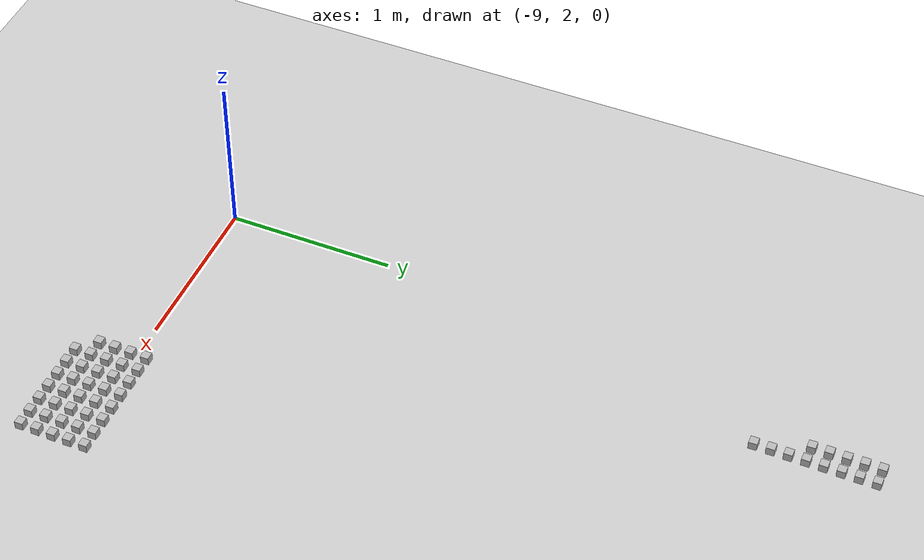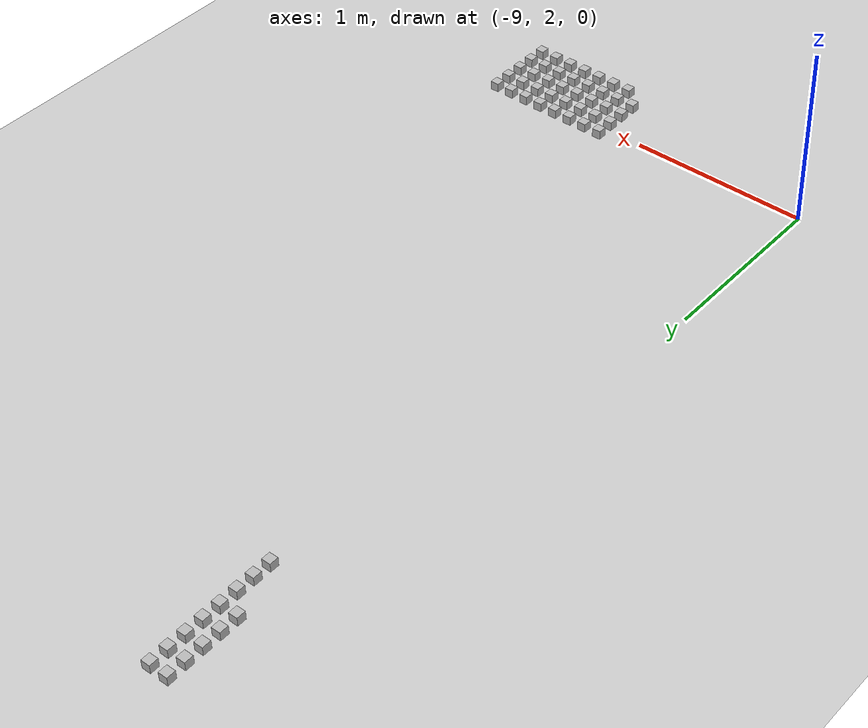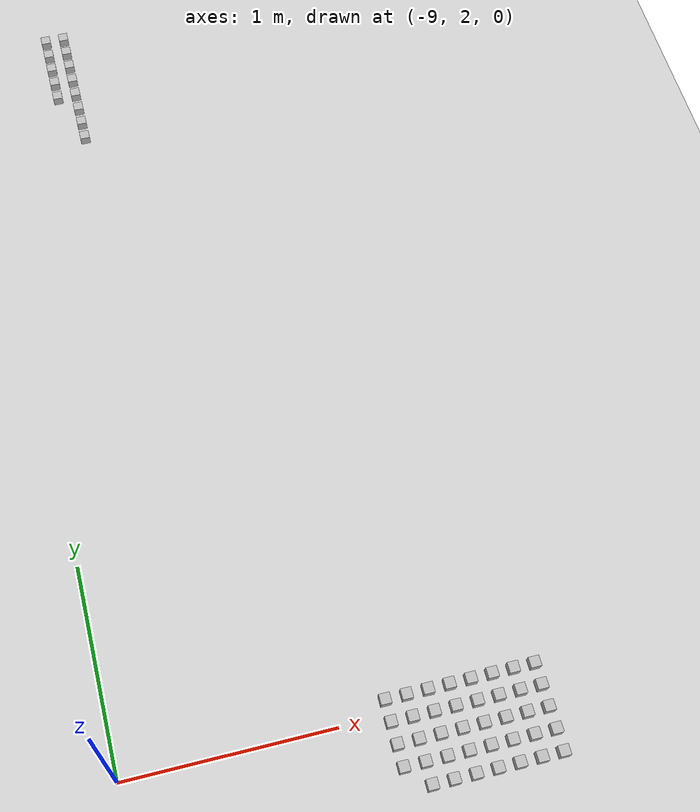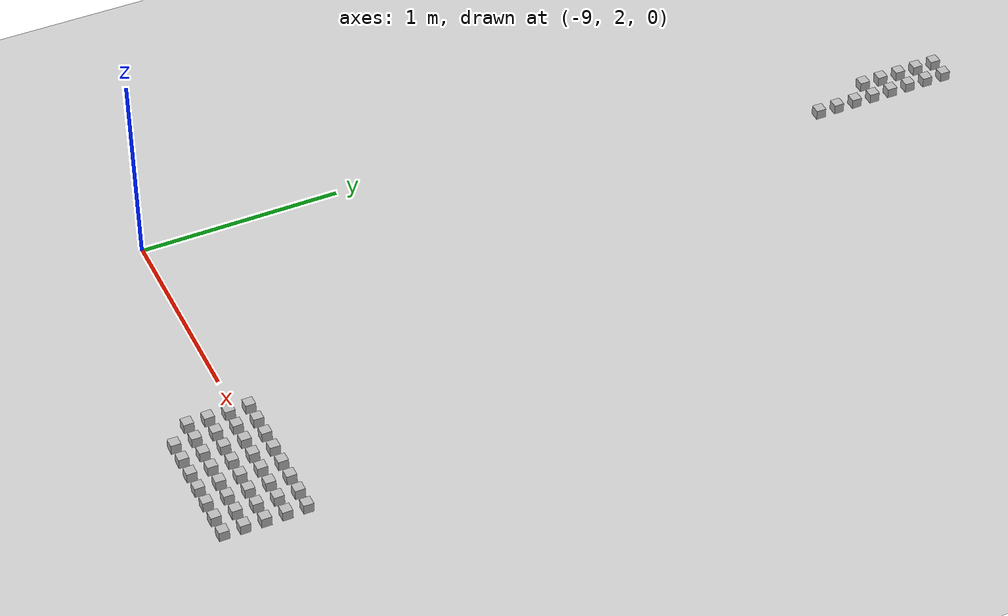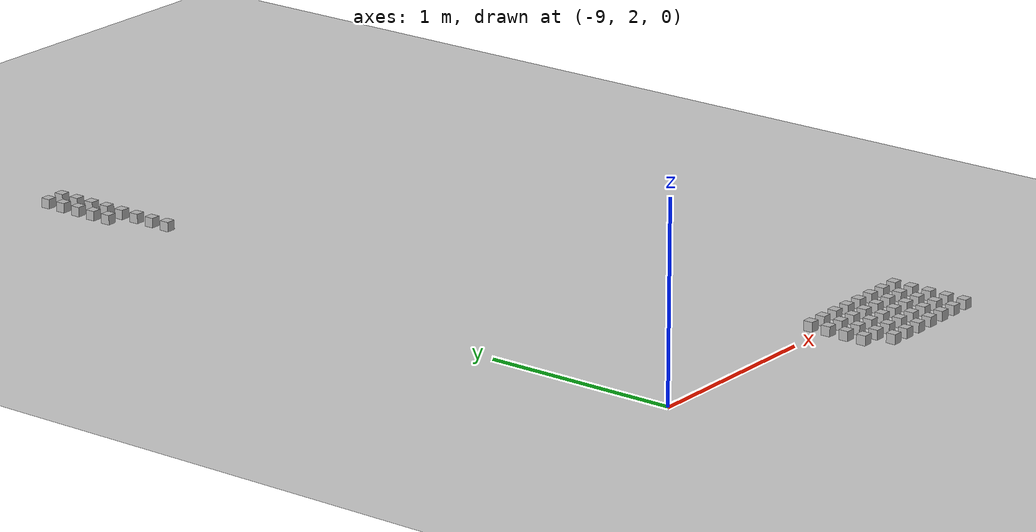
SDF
<sdf version="1.4">
 <world name="default">
  <model name="ground_plane">
   <static>1</static>
   <link name="link">
    <collision name="collision">
     <geometry><plane><normal>0 0 1</normal><size>100 100</size></plane></geometry>
     <surface><friction><ode><mu>100</mu><mu2>50</mu2></ode></friction></surface>
    </collision>
    <visual name="visual">
     <cast_shadows>0</cast_shadows>
     <geometry><plane><normal>0 0 1</normal><size>100 100</size></plane></geometry>
     <material>
      <script><uri>file://media/materials/scripts/gazebo.material</uri><name>Gazebo/Grey</name></script>
     </material>
    </visual>
    <velocity_decay><linear>0</linear><angular>0</angular></velocity_decay>
   </link>
  </model>
  <model name="at25">
   <static>0</static>
   <link name="link">
    <inertial>
     <mass>0.01</mass>
     <inertia><ixx>4e-05</ixx><ixy>0</ixy><ixz>0</ixz><iyy>4e-05</iyy><iyz>0</iyz><izz>4e-05</izz></inertia>
    </inertial>
    <visual name="visual">
     <geometry><box><size>0.05 0.05 0.05</size></box></geometry>
     <material>
      <script>
       <uri>model://at0/materials/scripts</uri>
       <uri>model://at0/materials/textures</uri>
       <name>at0/Diffuse</name>
      </script>
     </material>
    </visual>
    <collision name="collision">
     <geometry><box><size>0.05 0.05 0.05</size></box></geometry>
     <surface><friction><ode><mu>0.8</mu><mu2>0.7</mu2></ode></friction></surface>
    </collision>
    <velocity_decay><linear>0</linear><angular>0</angular></velocity_decay>
   </link>
   <pose>-7.67385 1.66515 0.025 0 -0 0</pose>
  </model>
  <model name="at26">
   <static>0</static>
   <link name="link">
    <inertial>
     <mass>0.01</mass>
     <inertia><ixx>4e-05</ixx><ixy>0</ixy><ixz>0</ixz><iyy>4e-05</iyy><iyz>0</iyz><izz>4e-05</izz></inertia>
    </inertial>
    <visual name="visual">
     <geometry><box><size>0.05 0.05 0.05</size></box></geometry>
     <material>
      <script>
       <uri>model://at0/materials/scripts</uri>
       <uri>model://at0/materials/textures</uri>
       <name>at0/Diffuse</name>
      </script>
     </material>
    </visual>
    <collision name="collision">
     <geometry><box><size>0.05 0.05 0.05</size></box></geometry>
     <surface><friction><ode><mu>0.8</mu><mu2>0.7</mu2></ode></friction></surface>
    </collision>
    <velocity_decay><linear>0</linear><angular>0</angular></velocity_decay>
   </link>
   <pose>-7.57385 1.66515 0.025 0 -0 0</pose>
  </model>
  <model name="at27">
   <static>0</static>
   <link name="link">
    <inertial>
     <mass>0.01</mass>
     <inertia><ixx>4e-05</ixx><ixy>0</ixy><ixz>0</ixz><iyy>4e-05</iyy><iyz>0</iyz><izz>4e-05</izz></inertia>
    </inertial>
    <visual name="visual">
     <geometry><box><size>0.05 0.05 0.05</size></box></geometry>
     <material>
      <script>
       <uri>model://at0/materials/scripts</uri>
       <uri>model://at0/materials/textures</uri>
       <name>at0/Diffuse</name>
      </script>
     </material>
    </visual>
    <collision name="collision">
     <geometry><box><size>0.05 0.05 0.05</size></box></geometry>
     <surface><friction><ode><mu>0.8</mu><mu2>0.7</mu2></ode></friction></surface>
    </collision>
    <velocity_decay><linear>0</linear><angular>0</angular></velocity_decay>
   </link>
   <pose>-7.47385 1.66515 0.025 0 -0 0</pose>
  </model>
  <model name="at28">
   <static>0</static>
   <link name="link">
    <inertial>
     <mass>0.01</mass>
     <inertia><ixx>4e-05</ixx><ixy>0</ixy><ixz>0</ixz><iyy>4e-05</iyy><iyz>0</iyz><izz>4e-05</izz></inertia>
    </inertial>
    <visual name="visual">
     <geometry><box><size>0.05 0.05 0.05</size></box></geometry>
     <material>
      <script>
       <uri>model://at0/materials/scripts</uri>
       <uri>model://at0/materials/textures</uri>
       <name>at0/Diffuse</name>
      </script>
     </material>
    </visual>
    <collision name="collision">
     <geometry><box><size>0.05 0.05 0.05</size></box></geometry>
     <surface><friction><ode><mu>0.8</mu><mu2>0.7</mu2></ode></friction></surface>
    </collision>
    <velocity_decay><linear>0</linear><angular>0</angular></velocity_decay>
   </link>
   <pose>-7.37385 1.66515 0.025 0 -0 0</pose>
  </model>
  <model name="at29">
   <static>0</static>
   <link name="link">
    <inertial>
     <mass>0.01</mass>
     <inertia><ixx>4e-05</ixx><ixy>0</ixy><ixz>0</ixz><iyy>4e-05</iyy><iyz>0</iyz><izz>4e-05</izz></inertia>
    </inertial>
    <visual name="visual">
     <geometry><box><size>0.05 0.05 0.05</size></box></geometry>
     <material>
      <script>
       <uri>model://at0/materials/scripts</uri>
       <uri>model://at0/materials/textures</uri>
       <name>at0/Diffuse</name>
      </script>
     </material>
    </visual>
    <collision name="collision">
     <geometry><box><size>0.05 0.05 0.05</size></box></geometry>
     <surface><friction><ode><mu>0.8</mu><mu2>0.7</mu2></ode></friction></surface>
    </collision>
    <velocity_decay><linear>0</linear><angular>0</angular></velocity_decay>
   </link>
   <pose>-7.27385 1.66515 0.025 0 -0 0</pose>
  </model>
  <model name="at30">
   <static>0</static>
   <link name="link">
    <inertial>
     <mass>0.01</mass>
     <inertia><ixx>4e-05</ixx><ixy>0</ixy><ixz>0</ixz><iyy>4e-05</iyy><iyz>0</iyz><izz>4e-05</izz></inertia>
    </inertial>
    <visual name="visual">
     <geometry><box><size>0.05 0.05 0.05</size></box></geometry>
     <material>
      <script>
       <uri>model://at0/materials/scripts</uri>
       <uri>model://at0/materials/textures</uri>
       <name>at0/Diffuse</name>
      </script>
     </material>
    </visual>
    <collision name="collision">
     <geometry><box><size>0.05 0.05 0.05</size></box></geometry>
     <surface><friction><ode><mu>0.8</mu><mu2>0.7</mu2></ode></friction></surface>
    </collision>
    <velocity_decay><linear>0</linear><angular>0</angular></velocity_decay>
   </link>
   <pose>-7.17385 1.66515 0.025 0 -0 0</pose>
  </model>
  <model name="at31">
   <static>0</static>
   <link name="link">
    <inertial>
     <mass>0.01</mass>
     <inertia><ixx>4e-05</ixx><ixy>0</ixy><ixz>0</ixz><iyy>4e-05</iyy><iyz>0</iyz><izz>4e-05</izz></inertia>
    </inertial>
    <visual name="visual">
     <geometry><box><size>0.05 0.05 0.05</size></box></geometry>
     <material>
      <script>
       <uri>model://at0/materials/scripts</uri>
       <uri>model://at0/materials/textures</uri>
       <name>at0/Diffuse</name>
      </script>
     </material>
    </visual>
    <collision name="collision">
     <geometry><box><size>0.05 0.05 0.05</size></box></geometry>
     <surface><friction><ode><mu>0.8</mu><mu2>0.7</mu2></ode></friction></surface>
    </collision>
    <velocity_decay><linear>0</linear><angular>0</angular></velocity_decay>
   </link>
   <pose>-7.07385 1.66515 0.025 0 -0 0</pose>
  </model>
  <model name="at32">
   <static>0</static>
   <link name="link">
    <inertial>
     <mass>0.01</mass>
     <inertia><ixx>4e-05</ixx><ixy>0</ixy><ixz>0</ixz><iyy>4e-05</iyy><iyz>0</iyz><izz>4e-05</izz></inertia>
    </inertial>
    <visual name="visual">
     <geometry><box><size>0.05 0.05 0.05</size></box></geometry>
     <material>
      <script>
       <uri>model://at0/materials/scripts</uri>
       <uri>model://at0/materials/textures</uri>
       <name>at0/Diffuse</name>
      </script>
     </material>
    </visual>
    <collision name="collision">
     <geometry><box><size>0.05 0.05 0.05</size></box></geometry>
     <surface><friction><ode><mu>0.8</mu><mu2>0.7</mu2></ode></friction></surface>
    </collision>
    <velocity_decay><linear>0</linear><angular>0</angular></velocity_decay>
   </link>
   <pose>-7.77385 1.76515 0.025 0 -0 0</pose>
  </model>
  <model name="at33">
   <static>0</static>
   <link name="link">
    <inertial>
     <mass>0.01</mass>
     <inertia><ixx>4e-05</ixx><ixy>0</ixy><ixz>0</ixz><iyy>4e-05</iyy><iyz>0</iyz><izz>4e-05</izz></inertia>
    </inertial>
    <visual name="visual">
     <geometry><box><size>0.05 0.05 0.05</size></box></geometry>
     <material>
      <script>
       <uri>model://at0/materials/scripts</uri>
       <uri>model://at0/materials/textures</uri>
       <name>at0/Diffuse</name>
      </script>
     </material>
    </visual>
    <collision name="collision">
     <geometry><box><size>0.05 0.05 0.05</size></box></geometry>
     <surface><friction><ode><mu>0.8</mu><mu2>0.7</mu2></ode></friction></surface>
    </collision>
    <velocity_decay><linear>0</linear><angular>0</angular></velocity_decay>
   </link>
   <pose>-7.67385 1.76515 0.025 0 -0 0</pose>
  </model>
  <model name="at34">
   <static>0</static>
   <link name="link">
    <inertial>
     <mass>0.01</mass>
     <inertia><ixx>4e-05</ixx><ixy>0</ixy><ixz>0</ixz><iyy>4e-05</iyy><iyz>0</iyz><izz>4e-05</izz></inertia>
    </inertial>
    <visual name="visual">
     <geometry><box><size>0.05 0.05 0.05</size></box></geometry>
     <material>
      <script>
       <uri>model://at0/materials/scripts</uri>
       <uri>model://at0/materials/textures</uri>
       <name>at0/Diffuse</name>
      </script>
     </material>
    </visual>
    <collision name="collision">
     <geometry><box><size>0.05 0.05 0.05</size></box></geometry>
     <surface><friction><ode><mu>0.8</mu><mu2>0.7</mu2></ode></friction></surface>
    </collision>
    <velocity_decay><linear>0</linear><angular>0</angular></velocity_decay>
   </link>
   <pose>-7.57385 1.76515 0.025 0 -0 0</pose>
  </model>
  <model name="at35">
   <static>0</static>
   <link name="link">
    <inertial>
     <mass>0.01</mass>
     <inertia><ixx>4e-05</ixx><ixy>0</ixy><ixz>0</ixz><iyy>4e-05</iyy><iyz>0</iyz><izz>4e-05</izz></inertia>
    </inertial>
    <visual name="visual">
     <geometry><box><size>0.05 0.05 0.05</size></box></geometry>
     <material>
      <script>
       <uri>model://at0/materials/scripts</uri>
       <uri>model://at0/materials/textures</uri>
       <name>at0/Diffuse</name>
      </script>
     </material>
    </visual>
    <collision name="collision">
     <geometry><box><size>0.05 0.05 0.05</size></box></geometry>
     <surface><friction><ode><mu>0.8</mu><mu2>0.7</mu2></ode></friction></surface>
    </collision>
    <velocity_decay><linear>0</linear><angular>0</angular></velocity_decay>
   </link>
   <pose>-7.47385 1.76515 0.025 0 -0 0</pose>
  </model>
  <model name="at36">
   <static>0</static>
   <link name="link">
    <inertial>
     <mass>0.01</mass>
     <inertia><ixx>4e-05</ixx><ixy>0</ixy><ixz>0</ixz><iyy>4e-05</iyy><iyz>0</iyz><izz>4e-05</izz></inertia>
    </inertial>
    <visual name="visual">
     <geometry><box><size>0.05 0.05 0.05</size></box></geometry>
     <material>
      <script>
       <uri>model://at0/materials/scripts</uri>
       <uri>model://at0/materials/textures</uri>
       <name>at0/Diffuse</name>
      </script>
     </material>
    </visual>
    <collision name="collision">
     <geometry><box><size>0.05 0.05 0.05</size></box></geometry>
     <surface><friction><ode><mu>0.8</mu><mu2>0.7</mu2></ode></friction></surface>
    </collision>
    <velocity_decay><linear>0</linear><angular>0</angular></velocity_decay>
   </link>
   <pose>-7.37385 1.76515 0.025 0 -0 0</pose>
  </model>
  <model name="at37">
   <static>0</static>
   <link name="link">
    <inertial>
     <mass>0.01</mass>
     <inertia><ixx>4e-05</ixx><ixy>0</ixy><ixz>0</ixz><iyy>4e-05</iyy><iyz>0</iyz><izz>4e-05</izz></inertia>
    </inertial>
    <visual name="visual">
     <geometry><box><size>0.05 0.05 0.05</size></box></geometry>
     <material>
      <script>
       <uri>model://at0/materials/scripts</uri>
       <uri>model://at0/materials/textures</uri>
       <name>at0/Diffuse</name>
      </script>
     </material>
    </visual>
    <collision name="collision">
     <geometry><box><size>0.05 0.05 0.05</size></box></geometry>
     <surface><friction><ode><mu>0.8</mu><mu2>0.7</mu2></ode></friction></surface>
    </collision>
    <velocity_decay><linear>0</linear><angular>0</angular></velocity_decay>
   </link>
   <pose>-7.27385 1.76515 0.025 0 -0 0</pose>
  </model>
  <model name="at38">
   <static>0</static>
   <link name="link">
    <inertial>
     <mass>0.01</mass>
     <inertia><ixx>4e-05</ixx><ixy>0</ixy><ixz>0</ixz><iyy>4e-05</iyy><iyz>0</iyz><izz>4e-05</izz></inertia>
    </inertial>
    <visual name="visual">
     <geometry><box><size>0.05 0.05 0.05</size></box></geometry>
     <material>
      <script>
       <uri>model://at0/materials/scripts</uri>
       <uri>model://at0/materials/textures</uri>
       <name>at0/Diffuse</name>
      </script>
     </material>
    </visual>
    <collision name="collision">
     <geometry><box><size>0.05 0.05 0.05</size></box></geometry>
     <surface><friction><ode><mu>0.8</mu><mu2>0.7</mu2></ode></friction></surface>
    </collision>
    <velocity_decay><linear>0</linear><angular>0</angular></velocity_decay>
   </link>
   <pose>-7.17385 1.76515 0.025 0 -0 0</pose>
  </model>
  <model name="at39">
   <static>0</static>
   <link name="link">
    <inertial>
     <mass>0.01</mass>
     <inertia><ixx>4e-05</ixx><ixy>0</ixy><ixz>0</ixz><iyy>4e-05</iyy><iyz>0</iyz><izz>4e-05</izz></inertia>
    </inertial>
    <visual name="visual">
     <geometry><box><size>0.05 0.05 0.05</size></box></geometry>
     <material>
      <script>
       <uri>model://at0/materials/scripts</uri>
       <uri>model://at0/materials/textures</uri>
       <name>at0/Diffuse</name>
      </script>
     </material>
    </visual>
    <collision name="collision">
     <geometry><box><size>0.05 0.05 0.05</size></box></geometry>
     <surface><friction><ode><mu>0.8</mu><mu2>0.7</mu2></ode></friction></surface>
    </collision>
    <velocity_decay><linear>0</linear><angular>0</angular></velocity_decay>
   </link>
   <pose>-7.07385 1.76515 0.025 0 -0 0</pose>
  </model>
  <model name="at40">
   <static>0</static>
   <link name="link">
    <inertial>
     <mass>0.01</mass>
     <inertia><ixx>4e-05</ixx><ixy>0</ixy><ixz>0</ixz><iyy>4e-05</iyy><iyz>0</iyz><izz>4e-05</izz></inertia>
    </inertial>
    <visual name="visual">
     <geometry><box><size>0.05 0.05 0.05</size></box></geometry>
     <material>
      <script>
       <uri>model://at0/materials/scripts</uri>
       <uri>model://at0/materials/textures</uri>
       <name>at0/Diffuse</name>
      </script>
     </material>
    </visual>
    <collision name="collision">
     <geometry><box><size>0.05 0.05 0.05</size></box></geometry>
     <surface><friction><ode><mu>0.8</mu><mu2>0.7</mu2></ode></friction></surface>
    </collision>
    <velocity_decay><linear>0</linear><angular>0</angular></velocity_decay>
   </link>
   <pose>-7.77385 1.86515 0.025 0 -0 0</pose>
  </model>
  <model name="at41">
   <static>0</static>
   <link name="link">
    <inertial>
     <mass>0.01</mass>
     <inertia><ixx>4e-05</ixx><ixy>0</ixy><ixz>0</ixz><iyy>4e-05</iyy><iyz>0</iyz><izz>4e-05</izz></inertia>
    </inertial>
    <visual name="visual">
     <geometry><box><size>0.05 0.05 0.05</size></box></geometry>
     <material>
      <script>
       <uri>model://at0/materials/scripts</uri>
       <uri>model://at0/materials/textures</uri>
       <name>at0/Diffuse</name>
      </script>
     </material>
    </visual>
    <collision name="collision">
     <geometry><box><size>0.05 0.05 0.05</size></box></geometry>
     <surface><friction><ode><mu>0.8</mu><mu2>0.7</mu2></ode></friction></surface>
    </collision>
    <velocity_decay><linear>0</linear><angular>0</angular></velocity_decay>
   </link>
   <pose>-7.67385 1.86515 0.025 0 -0 0</pose>
  </model>
  <model name="at42">
   <static>0</static>
   <link name="link">
    <inertial>
     <mass>0.01</mass>
     <inertia><ixx>4e-05</ixx><ixy>0</ixy><ixz>0</ixz><iyy>4e-05</iyy><iyz>0</iyz><izz>4e-05</izz></inertia>
    </inertial>
    <visual name="visual">
     <geometry><box><size>0.05 0.05 0.05</size></box></geometry>
     <material>
      <script>
       <uri>model://at0/materials/scripts</uri>
       <uri>model://at0/materials/textures</uri>
       <name>at0/Diffuse</name>
      </script>
     </material>
    </visual>
    <collision name="collision">
     <geometry><box><size>0.05 0.05 0.05</size></box></geometry>
     <surface><friction><ode><mu>0.8</mu><mu2>0.7</mu2></ode></friction></surface>
    </collision>
    <velocity_decay><linear>0</linear><angular>0</angular></velocity_decay>
   </link>
   <pose>-7.57385 1.86515 0.025 0 -0 0</pose>
  </model>
  <model name="at43">
   <static>0</static>
   <link name="link">
    <inertial>
     <mass>0.01</mass>
     <inertia><ixx>4e-05</ixx><ixy>0</ixy><ixz>0</ixz><iyy>4e-05</iyy><iyz>0</iyz><izz>4e-05</izz></inertia>
    </inertial>
    <visual name="visual">
     <geometry><box><size>0.05 0.05 0.05</size></box></geometry>
     <material>
      <script>
       <uri>model://at0/materials/scripts</uri>
       <uri>model://at0/materials/textures</uri>
       <name>at0/Diffuse</name>
      </script>
     </material>
    </visual>
    <collision name="collision">
     <geometry><box><size>0.05 0.05 0.05</size></box></geometry>
     <surface><friction><ode><mu>0.8</mu><mu2>0.7</mu2></ode></friction></surface>
    </collision>
    <velocity_decay><linear>0</linear><angular>0</angular></velocity_decay>
   </link>
   <pose>-7.47385 1.86515 0.025 0 -0 0</pose>
  </model>
  <model name="at44">
   <static>0</static>
   <link name="link">
    <inertial>
     <mass>0.01</mass>
     <inertia><ixx>4e-05</ixx><ixy>0</ixy><ixz>0</ixz><iyy>4e-05</iyy><iyz>0</iyz><izz>4e-05</izz></inertia>
    </inertial>
    <visual name="visual">
     <geometry><box><size>0.05 0.05 0.05</size></box></geometry>
     <material>
      <script>
       <uri>model://at0/materials/scripts</uri>
       <uri>model://at0/materials/textures</uri>
       <name>at0/Diffuse</name>
      </script>
     </material>
    </visual>
    <collision name="collision">
     <geometry><box><size>0.05 0.05 0.05</size></box></geometry>
     <surface><friction><ode><mu>0.8</mu><mu2>0.7</mu2></ode></friction></surface>
    </collision>
    <velocity_decay><linear>0</linear><angular>0</angular></velocity_decay>
   </link>
   <pose>-7.37385 1.86515 0.025 0 -0 0</pose>
  </model>
  <model name="at45">
   <static>0</static>
   <link name="link">
    <inertial>
     <mass>0.01</mass>
     <inertia><ixx>4e-05</ixx><ixy>0</ixy><ixz>0</ixz><iyy>4e-05</iyy><iyz>0</iyz><izz>4e-05</izz></inertia>
    </inertial>
    <visual name="visual">
     <geometry><box><size>0.05 0.05 0.05</size></box></geometry>
     <material>
      <script>
       <uri>model://at0/materials/scripts</uri>
       <uri>model://at0/materials/textures</uri>
       <name>at0/Diffuse</name>
      </script>
     </material>
    </visual>
    <collision name="collision">
     <geometry><box><size>0.05 0.05 0.05</size></box></geometry>
     <surface><friction><ode><mu>0.8</mu><mu2>0.7</mu2></ode></friction></surface>
    </collision>
    <velocity_decay><linear>0</linear><angular>0</angular></velocity_decay>
   </link>
   <pose>-7.27385 1.86515 0.025 0 -0 0</pose>
  </model>
  <model name="at46">
   <static>0</static>
   <link name="link">
    <inertial>
     <mass>0.01</mass>
     <inertia><ixx>4e-05</ixx><ixy>0</ixy><ixz>0</ixz><iyy>4e-05</iyy><iyz>0</iyz><izz>4e-05</izz></inertia>
    </inertial>
    <visual name="visual">
     <geometry><box><size>0.05 0.05 0.05</size></box></geometry>
     <material>
      <script>
       <uri>model://at0/materials/scripts</uri>
       <uri>model://at0/materials/textures</uri>
       <name>at0/Diffuse</name>
      </script>
     </material>
    </visual>
    <collision name="collision">
     <geometry><box><size>0.05 0.05 0.05</size></box></geometry>
     <surface><friction><ode><mu>0.8</mu><mu2>0.7</mu2></ode></friction></surface>
    </collision>
    <velocity_decay><linear>0</linear><angular>0</angular></velocity_decay>
   </link>
   <pose>-7.17385 1.86515 0.025 0 -0 0</pose>
  </model>
  <model name="at47">
   <static>0</static>
   <link name="link">
    <inertial>
     <mass>0.01</mass>
     <inertia><ixx>4e-05</ixx><ixy>0</ixy><ixz>0</ixz><iyy>4e-05</iyy><iyz>0</iyz><izz>4e-05</izz></inertia>
    </inertial>
    <visual name="visual">
     <geometry><box><size>0.05 0.05 0.05</size></box></geometry>
     <material>
      <script>
       <uri>model://at0/materials/scripts</uri>
       <uri>model://at0/materials/textures</uri>
       <name>at0/Diffuse</name>
      </script>
     </material>
    </visual>
    <collision name="collision">
     <geometry><box><size>0.05 0.05 0.05</size></box></geometry>
     <surface><friction><ode><mu>0.8</mu><mu2>0.7</mu2></ode></friction></surface>
    </collision>
    <velocity_decay><linear>0</linear><angular>0</angular></velocity_decay>
   </link>
   <pose>-7.07385 1.86515 0.025 0 -0 0</pose>
  </model>
  <model name="at48">
   <static>0</static>
   <link name="link">
    <inertial>
     <mass>0.01</mass>
     <inertia><ixx>4e-05</ixx><ixy>0</ixy><ixz>0</ixz><iyy>4e-05</iyy><iyz>0</iyz><izz>4e-05</izz></inertia>
    </inertial>
    <visual name="visual">
     <geometry><box><size>0.05 0.05 0.05</size></box></geometry>
     <material>
      <script>
       <uri>model://at0/materials/scripts</uri>
       <uri>model://at0/materials/textures</uri>
       <name>at0/Diffuse</name>
      </script>
     </material>
    </visual>
    <collision name="collision">
     <geometry><box><size>0.05 0.05 0.05</size></box></geometry>
     <surface><friction><ode><mu>0.8</mu><mu2>0.7</mu2></ode></friction></surface>
    </collision>
    <velocity_decay><linear>0</linear><angular>0</angular></velocity_decay>
   </link>
   <pose>-7.77385 1.96515 0.025 0 -0 0</pose>
  </model>
  <model name="at49">
   <static>0</static>
   <link name="link">
    <inertial>
     <mass>0.01</mass>
     <inertia><ixx>4e-05</ixx><ixy>0</ixy><ixz>0</ixz><iyy>4e-05</iyy><iyz>0</iyz><izz>4e-05</izz></inertia>
    </inertial>
    <visual name="visual">
     <geometry><box><size>0.05 0.05 0.05</size></box></geometry>
     <material>
      <script>
       <uri>model://at0/materials/scripts</uri>
       <uri>model://at0/materials/textures</uri>
       <name>at0/Diffuse</name>
      </script>
     </material>
    </visual>
    <collision name="collision">
     <geometry><box><size>0.05 0.05 0.05</size></box></geometry>
     <surface><friction><ode><mu>0.8</mu><mu2>0.7</mu2></ode></friction></surface>
    </collision>
    <velocity_decay><linear>0</linear><angular>0</angular></velocity_decay>
   </link>
   <pose>-7.67385 1.96515 0.025 0 -0 0</pose>
  </model>
  <model name="at50">
   <static>0</static>
   <link name="link">
    <inertial>
     <mass>0.01</mass>
     <inertia><ixx>4e-05</ixx><ixy>0</ixy><ixz>0</ixz><iyy>4e-05</iyy><iyz>0</iyz><izz>4e-05</izz></inertia>
    </inertial>
    <visual name="visual">
     <geometry><box><size>0.05 0.05 0.05</size></box></geometry>
     <material>
      <script>
       <uri>model://at0/materials/scripts</uri>
       <uri>model://at0/materials/textures</uri>
       <name>at0/Diffuse</name>
      </script>
     </material>
    </visual>
    <collision name="collision">
     <geometry><box><size>0.05 0.05 0.05</size></box></geometry>
     <surface><friction><ode><mu>0.8</mu><mu2>0.7</mu2></ode></friction></surface>
    </collision>
    <velocity_decay><linear>0</linear><angular>0</angular></velocity_decay>
   </link>
   <pose>-7.57385 1.96515 0.025 0 -0 0</pose>
  </model>
  <model name="at51">
   <static>0</static>
   <link name="link">
    <inertial>
     <mass>0.01</mass>
     <inertia><ixx>4e-05</ixx><ixy>0</ixy><ixz>0</ixz><iyy>4e-05</iyy><iyz>0</iyz><izz>4e-05</izz></inertia>
    </inertial>
    <visual name="visual">
     <geometry><box><size>0.05 0.05 0.05</size></box></geometry>
     <material>
      <script>
       <uri>model://at0/materials/scripts</uri>
       <uri>model://at0/materials/textures</uri>
       <name>at0/Diffuse</name>
      </script>
     </material>
    </visual>
    <collision name="collision">
     <geometry><box><size>0.05 0.05 0.05</size></box></geometry>
     <surface><friction><ode><mu>0.8</mu><mu2>0.7</mu2></ode></friction></surface>
    </collision>
    <velocity_decay><linear>0</linear><angular>0</angular></velocity_decay>
   </link>
   <pose>-7.47385 1.96515 0.025 0 -0 0</pose>
  </model>
  <model name="at52">
   <static>0</static>
   <link name="link">
    <inertial>
     <mass>0.01</mass>
     <inertia><ixx>4e-05</ixx><ixy>0</ixy><ixz>0</ixz><iyy>4e-05</iyy><iyz>0</iyz><izz>4e-05</izz></inertia>
    </inertial>
    <visual name="visual">
     <geometry><box><size>0.05 0.05 0.05</size></box></geometry>
     <material>
      <script>
       <uri>model://at0/materials/scripts</uri>
       <uri>model://at0/materials/textures</uri>
       <name>at0/Diffuse</name>
      </script>
     </material>
    </visual>
    <collision name="collision">
     <geometry><box><size>0.05 0.05 0.05</size></box></geometry>
     <surface><friction><ode><mu>0.8</mu><mu2>0.7</mu2></ode></friction></surface>
    </collision>
    <velocity_decay><linear>0</linear><angular>0</angular></velocity_decay>
   </link>
   <pose>-7.37385 1.96515 0.025 0 -0 0</pose>
  </model>
  <model name="at53">
   <static>0</static>
   <link name="link">
    <inertial>
     <mass>0.01</mass>
     <inertia><ixx>4e-05</ixx><ixy>0</ixy><ixz>0</ixz><iyy>4e-05</iyy><iyz>0</iyz><izz>4e-05</izz></inertia>
    </inertial>
    <visual name="visual">
     <geometry><box><size>0.05 0.05 0.05</size></box></geometry>
     <material>
      <script>
       <uri>model://at0/materials/scripts</uri>
       <uri>model://at0/materials/textures</uri>
       <name>at0/Diffuse</name>
      </script>
     </material>
    </visual>
    <collision name="collision">
     <geometry><box><size>0.05 0.05 0.05</size></box></geometry>
     <surface><friction><ode><mu>0.8</mu><mu2>0.7</mu2></ode></friction></surface>
    </collision>
    <velocity_decay><linear>0</linear><angular>0</angular></velocity_decay>
   </link>
   <pose>-7.27385 1.96515 0.025 0 -0 0</pose>
  </model>
  <model name="at54">
   <static>0</static>
   <link name="link">
    <inertial>
     <mass>0.01</mass>
     <inertia><ixx>4e-05</ixx><ixy>0</ixy><ixz>0</ixz><iyy>4e-05</iyy><iyz>0</iyz><izz>4e-05</izz></inertia>
    </inertial>
    <visual name="visual">
     <geometry><box><size>0.05 0.05 0.05</size></box></geometry>
     <material>
      <script>
       <uri>model://at0/materials/scripts</uri>
       <uri>model://at0/materials/textures</uri>
       <name>at0/Diffuse</name>
      </script>
     </material>
    </visual>
    <collision name="collision">
     <geometry><box><size>0.05 0.05 0.05</size></box></geometry>
     <surface><friction><ode><mu>0.8</mu><mu2>0.7</mu2></ode></friction></surface>
    </collision>
    <velocity_decay><linear>0</linear><angular>0</angular></velocity_decay>
   </link>
   <pose>-7.17385 1.96515 0.025 0 -0 0</pose>
  </model>
  <model name="at55">
   <static>0</static>
   <link name="link">
    <inertial>
     <mass>0.01</mass>
     <inertia><ixx>4e-05</ixx><ixy>0</ixy><ixz>0</ixz><iyy>4e-05</iyy><iyz>0</iyz><izz>4e-05</izz></inertia>
    </inertial>
    <visual name="visual">
     <geometry><box><size>0.05 0.05 0.05</size></box></geometry>
     <material>
      <script>
       <uri>model://at0/materials/scripts</uri>
       <uri>model://at0/materials/textures</uri>
       <name>at0/Diffuse</name>
      </script>
     </material>
    </visual>
    <collision name="collision">
     <geometry><box><size>0.05 0.05 0.05</size></box></geometry>
     <surface><friction><ode><mu>0.8</mu><mu2>0.7</mu2></ode></friction></surface>
    </collision>
    <velocity_decay><linear>0</linear><angular>0</angular></velocity_decay>
   </link>
   <pose>-7.07385 1.96515 0.025 0 -0 0</pose>
  </model>
  <model name="at56">
   <static>0</static>
   <link name="link">
    <inertial>
     <mass>0.01</mass>
     <inertia><ixx>4e-05</ixx><ixy>0</ixy><ixz>0</ixz><iyy>4e-05</iyy><iyz>0</iyz><izz>4e-05</izz></inertia>
    </inertial>
    <visual name="visual">
     <geometry><box><size>0.05 0.05 0.05</size></box></geometry>
     <material>
      <script>
       <uri>model://at0/materials/scripts</uri>
       <uri>model://at0/materials/textures</uri>
       <name>at0/Diffuse</name>
      </script>
     </material>
    </visual>
    <collision name="collision">
     <geometry><box><size>0.05 0.05 0.05</size></box></geometry>
     <surface><friction><ode><mu>0.8</mu><mu2>0.7</mu2></ode></friction></surface>
    </collision>
    <velocity_decay><linear>0</linear><angular>0</angular></velocity_decay>
   </link>
   <pose>-7.77385 2.06515 0.025 0 -0 0</pose>
  </model>
  <model name="at57">
   <static>0</static>
   <link name="link">
    <inertial>
     <mass>0.01</mass>
     <inertia><ixx>4e-05</ixx><ixy>0</ixy><ixz>0</ixz><iyy>4e-05</iyy><iyz>0</iyz><izz>4e-05</izz></inertia>
    </inertial>
    <visual name="visual">
     <geometry><box><size>0.05 0.05 0.05</size></box></geometry>
     <material>
      <script>
       <uri>model://at0/materials/scripts</uri>
       <uri>model://at0/materials/textures</uri>
       <name>at0/Diffuse</name>
      </script>
     </material>
    </visual>
    <collision name="collision">
     <geometry><box><size>0.05 0.05 0.05</size></box></geometry>
     <surface><friction><ode><mu>0.8</mu><mu2>0.7</mu2></ode></friction></surface>
    </collision>
    <velocity_decay><linear>0</linear><angular>0</angular></velocity_decay>
   </link>
   <pose>-7.67385 2.06515 0.025 0 -0 0</pose>
  </model>
  <model name="at58">
   <static>0</static>
   <link name="link">
    <inertial>
     <mass>0.01</mass>
     <inertia><ixx>4e-05</ixx><ixy>0</ixy><ixz>0</ixz><iyy>4e-05</iyy><iyz>0</iyz><izz>4e-05</izz></inertia>
    </inertial>
    <visual name="visual">
     <geometry><box><size>0.05 0.05 0.05</size></box></geometry>
     <material>
      <script>
       <uri>model://at0/materials/scripts</uri>
       <uri>model://at0/materials/textures</uri>
       <name>at0/Diffuse</name>
      </script>
     </material>
    </visual>
    <collision name="collision">
     <geometry><box><size>0.05 0.05 0.05</size></box></geometry>
     <surface><friction><ode><mu>0.8</mu><mu2>0.7</mu2></ode></friction></surface>
    </collision>
    <velocity_decay><linear>0</linear><angular>0</angular></velocity_decay>
   </link>
   <pose>-7.57385 2.06515 0.025 0 -0 0</pose>
  </model>
  <model name="at59">
   <static>0</static>
   <link name="link">
    <inertial>
     <mass>0.01</mass>
     <inertia><ixx>4e-05</ixx><ixy>0</ixy><ixz>0</ixz><iyy>4e-05</iyy><iyz>0</iyz><izz>4e-05</izz></inertia>
    </inertial>
    <visual name="visual">
     <geometry><box><size>0.05 0.05 0.05</size></box></geometry>
     <material>
      <script>
       <uri>model://at0/materials/scripts</uri>
       <uri>model://at0/materials/textures</uri>
       <name>at0/Diffuse</name>
      </script>
     </material>
    </visual>
    <collision name="collision">
     <geometry><box><size>0.05 0.05 0.05</size></box></geometry>
     <surface><friction><ode><mu>0.8</mu><mu2>0.7</mu2></ode></friction></surface>
    </collision>
    <velocity_decay><linear>0</linear><angular>0</angular></velocity_decay>
   </link>
   <pose>-7.47385 2.06515 0.025 0 -0 0</pose>
  </model>
  <model name="at60">
   <static>0</static>
   <link name="link">
    <inertial>
     <mass>0.01</mass>
     <inertia><ixx>4e-05</ixx><ixy>0</ixy><ixz>0</ixz><iyy>4e-05</iyy><iyz>0</iyz><izz>4e-05</izz></inertia>
    </inertial>
    <visual name="visual">
     <geometry><box><size>0.05 0.05 0.05</size></box></geometry>
     <material>
      <script>
       <uri>model://at0/materials/scripts</uri>
       <uri>model://at0/materials/textures</uri>
       <name>at0/Diffuse</name>
      </script>
     </material>
    </visual>
    <collision name="collision">
     <geometry><box><size>0.05 0.05 0.05</size></box></geometry>
     <surface><friction><ode><mu>0.8</mu><mu2>0.7</mu2></ode></friction></surface>
    </collision>
    <velocity_decay><linear>0</linear><angular>0</angular></velocity_decay>
   </link>
   <pose>-7.37385 2.06515 0.025 0 -0 0</pose>
  </model>
  <model name="at61">
   <static>0</static>
   <link name="link">
    <inertial>
     <mass>0.01</mass>
     <inertia><ixx>4e-05</ixx><ixy>0</ixy><ixz>0</ixz><iyy>4e-05</iyy><iyz>0</iyz><izz>4e-05</izz></inertia>
    </inertial>
    <visual name="visual">
     <geometry><box><size>0.05 0.05 0.05</size></box></geometry>
     <material>
      <script>
       <uri>model://at0/materials/scripts</uri>
       <uri>model://at0/materials/textures</uri>
       <name>at0/Diffuse</name>
      </script>
     </material>
    </visual>
    <collision name="collision">
     <geometry><box><size>0.05 0.05 0.05</size></box></geometry>
     <surface><friction><ode><mu>0.8</mu><mu2>0.7</mu2></ode></friction></surface>
    </collision>
    <velocity_decay><linear>0</linear><angular>0</angular></velocity_decay>
   </link>
   <pose>-7.27385 2.06515 0.025 0 -0 0</pose>
  </model>
  <model name="at62">
   <static>0</static>
   <link name="link">
    <inertial>
     <mass>0.01</mass>
     <inertia><ixx>4e-05</ixx><ixy>0</ixy><ixz>0</ixz><iyy>4e-05</iyy><iyz>0</iyz><izz>4e-05</izz></inertia>
    </inertial>
    <visual name="visual">
     <geometry><box><size>0.05 0.05 0.05</size></box></geometry>
     <material>
      <script>
       <uri>model://at0/materials/scripts</uri>
       <uri>model://at0/materials/textures</uri>
       <name>at0/Diffuse</name>
      </script>
     </material>
    </visual>
    <collision name="collision">
     <geometry><box><size>0.05 0.05 0.05</size></box></geometry>
     <surface><friction><ode><mu>0.8</mu><mu2>0.7</mu2></ode></friction></surface>
    </collision>
    <velocity_decay><linear>0</linear><angular>0</angular></velocity_decay>
   </link>
   <pose>-7.17385 2.06515 0.025 0 -0 0</pose>
  </model>
  <model name="at63">
   <static>0</static>
   <link name="link">
    <inertial>
     <mass>0.01</mass>
     <inertia><ixx>4e-05</ixx><ixy>0</ixy><ixz>0</ixz><iyy>4e-05</iyy><iyz>0</iyz><izz>4e-05</izz></inertia>
    </inertial>
    <visual name="visual">
     <geometry><box><size>0.05 0.05 0.05</size></box></geometry>
     <material>
      <script>
       <uri>model://at0/materials/scripts</uri>
       <uri>model://at0/materials/textures</uri>
       <name>at0/Diffuse</name>
      </script>
     </material>
    </visual>
    <collision name="collision">
     <geometry><box><size>0.05 0.05 0.05</size></box></geometry>
     <surface><friction><ode><mu>0.8</mu><mu2>0.7</mu2></ode></friction></surface>
    </collision>
    <velocity_decay><linear>0</linear><angular>0</angular></velocity_decay>
   </link>
   <pose>-7.07385 2.06515 0.025 0 -0 0</pose>
  </model>
  <model name="at135">
   <static>0</static>
   <link name="link">
    <inertial>
     <mass>0.01</mass>
     <inertia><ixx>4e-05</ixx><ixy>0</ixy><ixz>0</ixz><iyy>4e-05</iyy><iyz>0</iyz><izz>4e-05</izz></inertia>
    </inertial>
    <visual name="visual">
     <geometry><box><size>0.05 0.05 0.05</size></box></geometry>
     <material>
      <script>
       <uri>model://at0/materials/scripts</uri>
       <uri>model://at0/materials/textures</uri>
       <name>at0/Diffuse</name>
      </script>
     </material>
    </visual>
    <collision name="collision">
     <geometry><box><size>0.05 0.05 0.05</size></box></geometry>
     <surface><friction><ode><mu>0.8</mu><mu2>0.7</mu2></ode></friction></surface>
    </collision>
    <velocity_decay><linear>0</linear><angular>0</angular></velocity_decay>
   </link>
   <pose>-8.53877 5.4002 0.025 0 -0 0</pose>
  </model>
  <model name="at143">
   <static>0</static>
   <link name="link">
    <inertial>
     <mass>0.01</mass>
     <inertia><ixx>4e-05</ixx><ixy>0</ixy><ixz>0</ixz><iyy>4e-05</iyy><iyz>0</iyz><izz>4e-05</izz></inertia>
    </inertial>
    <visual name="visual">
     <geometry><box><size>0.05 0.05 0.05</size></box></geometry>
     <material>
      <script>
       <uri>model://at0/materials/scripts</uri>
       <uri>model://at0/materials/textures</uri>
       <name>at0/Diffuse</name>
      </script>
     </material>
    </visual>
    <collision name="collision">
     <geometry><box><size>0.05 0.05 0.05</size></box></geometry>
     <surface><friction><ode><mu>0.8</mu><mu2>0.7</mu2></ode></friction></surface>
    </collision>
    <velocity_decay><linear>0</linear><angular>0</angular></velocity_decay>
   </link>
   <pose>-8.53877 5.5002 0.025 0 -0 0</pose>
  </model>
  <model name="at151">
   <static>0</static>
   <link name="link">
    <inertial>
     <mass>0.01</mass>
     <inertia><ixx>4e-05</ixx><ixy>0</ixy><ixz>0</ixz><iyy>4e-05</iyy><iyz>0</iyz><izz>4e-05</izz></inertia>
    </inertial>
    <visual name="visual">
     <geometry><box><size>0.05 0.05 0.05</size></box></geometry>
     <material>
      <script>
       <uri>model://at0/materials/scripts</uri>
       <uri>model://at0/materials/textures</uri>
       <name>at0/Diffuse</name>
      </script>
     </material>
    </visual>
    <collision name="collision">
     <geometry><box><size>0.05 0.05 0.05</size></box></geometry>
     <surface><friction><ode><mu>0.8</mu><mu2>0.7</mu2></ode></friction></surface>
    </collision>
    <velocity_decay><linear>0</linear><angular>0</angular></velocity_decay>
   </link>
   <pose>-8.53877 5.6002 0.025 0 -0 0</pose>
  </model>
  <model name="at158">
   <static>0</static>
   <link name="link">
    <inertial>
     <mass>0.01</mass>
     <inertia><ixx>4e-05</ixx><ixy>0</ixy><ixz>0</ixz><iyy>4e-05</iyy><iyz>0</iyz><izz>4e-05</izz></inertia>
    </inertial>
    <visual name="visual">
     <geometry><box><size>0.05 0.05 0.05</size></box></geometry>
     <material>
      <script>
       <uri>model://at0/materials/scripts</uri>
       <uri>model://at0/materials/textures</uri>
       <name>at0/Diffuse</name>
      </script>
     </material>
    </visual>
    <collision name="collision">
     <geometry><box><size>0.05 0.05 0.05</size></box></geometry>
     <surface><friction><ode><mu>0.8</mu><mu2>0.7</mu2></ode></friction></surface>
    </collision>
    <velocity_decay><linear>0</linear><angular>0</angular></velocity_decay>
   </link>
   <pose>-8.63877 5.7002 0.025 0 -0 0</pose>
  </model>
  <model name="at159">
   <static>0</static>
   <link name="link">
    <inertial>
     <mass>0.01</mass>
     <inertia><ixx>4e-05</ixx><ixy>0</ixy><ixz>0</ixz><iyy>4e-05</iyy><iyz>0</iyz><izz>4e-05</izz></inertia>
    </inertial>
    <visual name="visual">
     <geometry><box><size>0.05 0.05 0.05</size></box></geometry>
     <material>
      <script>
       <uri>model://at0/materials/scripts</uri>
       <uri>model://at0/materials/textures</uri>
       <name>at0/Diffuse</name>
      </script>
     </material>
    </visual>
    <collision name="collision">
     <geometry><box><size>0.05 0.05 0.05</size></box></geometry>
     <surface><friction><ode><mu>0.8</mu><mu2>0.7</mu2></ode></friction></surface>
    </collision>
    <velocity_decay><linear>0</linear><angular>0</angular></velocity_decay>
   </link>
   <pose>-8.53877 5.7002 0.025 0 -0 0</pose>
  </model>
  <model name="at166">
   <static>0</static>
   <link name="link">
    <inertial>
     <mass>0.01</mass>
     <inertia><ixx>4e-05</ixx><ixy>0</ixy><ixz>0</ixz><iyy>4e-05</iyy><iyz>0</iyz><izz>4e-05</izz></inertia>
    </inertial>
    <visual name="visual">
     <geometry><box><size>0.05 0.05 0.05</size></box></geometry>
     <material>
      <script>
       <uri>model://at0/materials/scripts</uri>
       <uri>model://at0/materials/textures</uri>
       <name>at0/Diffuse</name>
      </script>
     </material>
    </visual>
    <collision name="collision">
     <geometry><box><size>0.05 0.05 0.05</size></box></geometry>
     <surface><friction><ode><mu>0.8</mu><mu2>0.7</mu2></ode></friction></surface>
    </collision>
    <velocity_decay><linear>0</linear><angular>0</angular></velocity_decay>
   </link>
   <pose>-8.63877 5.8002 0.025 0 -0 0</pose>
  </model>
  <model name="at167">
   <static>0</static>
   <link name="link">
    <inertial>
     <mass>0.01</mass>
     <inertia><ixx>4e-05</ixx><ixy>0</ixy><ixz>0</ixz><iyy>4e-05</iyy><iyz>0</iyz><izz>4e-05</izz></inertia>
    </inertial>
    <visual name="visual">
     <geometry><box><size>0.05 0.05 0.05</size></box></geometry>
     <material>
      <script>
       <uri>model://at0/materials/scripts</uri>
       <uri>model://at0/materials/textures</uri>
       <name>at0/Diffuse</name>
      </script>
     </material>
    </visual>
    <collision name="collision">
     <geometry><box><size>0.05 0.05 0.05</size></box></geometry>
     <surface><friction><ode><mu>0.8</mu><mu2>0.7</mu2></ode></friction></surface>
    </collision>
    <velocity_decay><linear>0</linear><angular>0</angular></velocity_decay>
   </link>
   <pose>-8.53877 5.8002 0.025 0 -0 0</pose>
  </model>
  <model name="at174">
   <static>0</static>
   <link name="link">
    <inertial>
     <mass>0.01</mass>
     <inertia><ixx>4e-05</ixx><ixy>0</ixy><ixz>0</ixz><iyy>4e-05</iyy><iyz>0</iyz><izz>4e-05</izz></inertia>
    </inertial>
    <visual name="visual">
     <geometry><box><size>0.05 0.05 0.05</size></box></geometry>
     <material>
      <script>
       <uri>model://at0/materials/scripts</uri>
       <uri>model://at0/materials/textures</uri>
       <name>at0/Diffuse</name>
      </script>
     </material>
    </visual>
    <collision name="collision">
     <geometry><box><size>0.05 0.05 0.05</size></box></geometry>
     <surface><friction><ode><mu>0.8</mu><mu2>0.7</mu2></ode></friction></surface>
    </collision>
    <velocity_decay><linear>0</linear><angular>0</angular></velocity_decay>
   </link>
   <pose>-8.63877 5.9002 0.025 0 -0 0</pose>
  </model>
  <model name="at175">
   <static>0</static>
   <link name="link">
    <inertial>
     <mass>0.01</mass>
     <inertia><ixx>4e-05</ixx><ixy>0</ixy><ixz>0</ixz><iyy>4e-05</iyy><iyz>0</iyz><izz>4e-05</izz></inertia>
    </inertial>
    <visual name="visual">
     <geometry><box><size>0.05 0.05 0.05</size></box></geometry>
     <material>
      <script>
       <uri>model://at0/materials/scripts</uri>
       <uri>model://at0/materials/textures</uri>
       <name>at0/Diffuse</name>
      </script>
     </material>
    </visual>
    <collision name="collision">
     <geometry><box><size>0.05 0.05 0.05</size></box></geometry>
     <surface><friction><ode><mu>0.8</mu><mu2>0.7</mu2></ode></friction></surface>
    </collision>
    <velocity_decay><linear>0</linear><angular>0</angular></velocity_decay>
   </link>
   <pose>-8.53877 5.9002 0.025 0 -0 0</pose>
  </model>
  <model name="at182">
   <static>0</static>
   <link name="link">
    <inertial>
     <mass>0.01</mass>
     <inertia><ixx>4e-05</ixx><ixy>0</ixy><ixz>0</ixz><iyy>4e-05</iyy><iyz>0</iyz><izz>4e-05</izz></inertia>
    </inertial>
    <visual name="visual">
     <geometry><box><size>0.05 0.05 0.05</size></box></geometry>
     <material>
      <script>
       <uri>model://at0/materials/scripts</uri>
       <uri>model://at0/materials/textures</uri>
       <name>at0/Diffuse</name>
      </script>
     </material>
    </visual>
    <collision name="collision">
     <geometry><box><size>0.05 0.05 0.05</size></box></geometry>
     <surface><friction><ode><mu>0.8</mu><mu2>0.7</mu2></ode></friction></surface>
    </collision>
    <velocity_decay><linear>0</linear><angular>0</angular></velocity_decay>
   </link>
   <pose>-8.63877 6.0002 0.025 0 -0 0</pose>
  </model>
  <model name="at183">
   <static>0</static>
   <link name="link">
    <inertial>
     <mass>0.01</mass>
     <inertia><ixx>4e-05</ixx><ixy>0</ixy><ixz>0</ixz><iyy>4e-05</iyy><iyz>0</iyz><izz>4e-05</izz></inertia>
    </inertial>
    <visual name="visual">
     <geometry><box><size>0.05 0.05 0.05</size></box></geometry>
     <material>
      <script>
       <uri>model://at0/materials/scripts</uri>
       <uri>model://at0/materials/textures</uri>
       <name>at0/Diffuse</name>
      </script>
     </material>
    </visual>
    <collision name="collision">
     <geometry><box><size>0.05 0.05 0.05</size></box></geometry>
     <surface><friction><ode><mu>0.8</mu><mu2>0.7</mu2></ode></friction></surface>
    </collision>
    <velocity_decay><linear>0</linear><angular>0</angular></velocity_decay>
   </link>
   <pose>-8.53877 6.0002 0.025 0 -0 0</pose>
  </model>
  <model name="at190">
   <static>0</static>
   <link name="link">
    <inertial>
     <mass>0.01</mass>
     <inertia><ixx>4e-05</ixx><ixy>0</ixy><ixz>0</ixz><iyy>4e-05</iyy><iyz>0</iyz><izz>4e-05</izz></inertia>
    </inertial>
    <visual name="visual">
     <geometry><box><size>0.05 0.05 0.05</size></box></geometry>
     <material>
      <script>
       <uri>model://at0/materials/scripts</uri>
       <uri>model://at0/materials/textures</uri>
       <name>at0/Diffuse</name>
      </script>
     </material>
    </visual>
    <collision name="collision">
     <geometry><box><size>0.05 0.05 0.05</size></box></geometry>
     <surface><friction><ode><mu>0.8</mu><mu2>0.7</mu2></ode></friction></surface>
    </collision>
    <velocity_decay><linear>0</linear><angular>0</angular></velocity_decay>
   </link>
   <pose>-8.63877 6.1002 0.025 0 -0 0</pose>
  </model>
  <model name="at191">
   <static>0</static>
   <link name="link">
    <inertial>
     <mass>0.01</mass>
     <inertia><ixx>4e-05</ixx><ixy>0</ixy><ixz>0</ixz><iyy>4e-05</iyy><iyz>0</iyz><izz>4e-05</izz></inertia>
    </inertial>
    <visual name="visual">
     <geometry><box><size>0.05 0.05 0.05</size></box></geometry>
     <material>
      <script>
       <uri>model://at0/materials/scripts</uri>
       <uri>model://at0/materials/textures</uri>
       <name>at0/Diffuse</name>
      </script>
     </material>
    </visual>
    <collision name="collision">
     <geometry><box><size>0.05 0.05 0.05</size></box></geometry>
     <surface><friction><ode><mu>0.8</mu><mu2>0.7</mu2></ode></friction></surface>
    </collision>
    <velocity_decay><linear>0</linear><angular>0</angular></velocity_decay>
   </link>
   <pose>-8.53877 6.1002 0.025 0 -0 0</pose>
  </model>
 </world>
</sdf>
